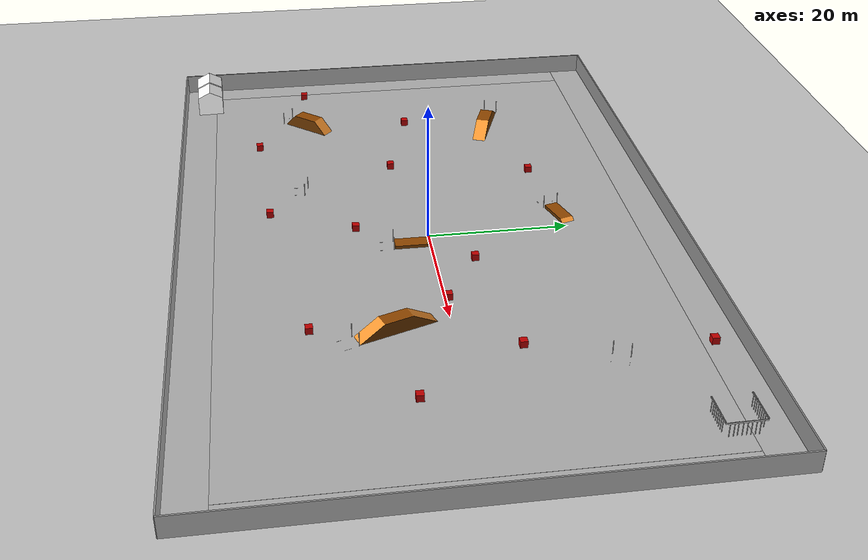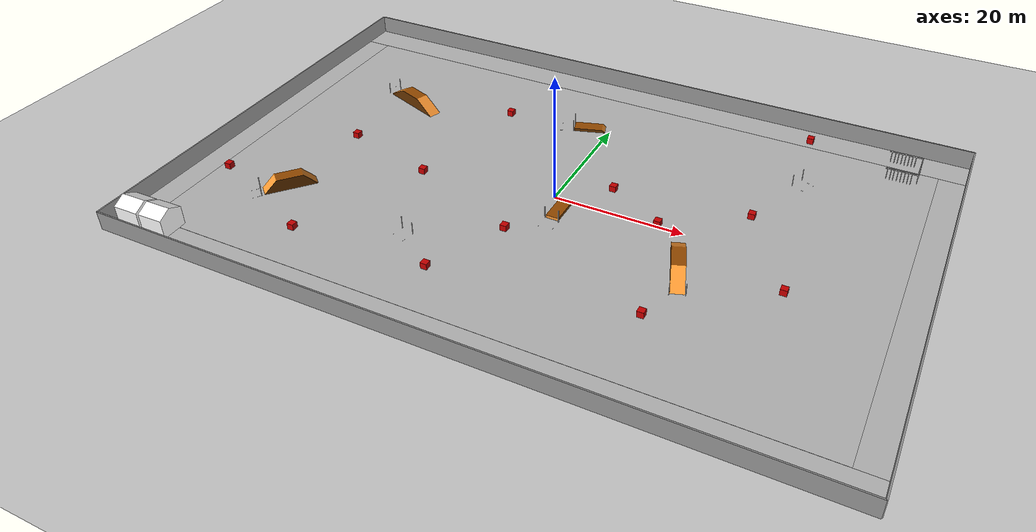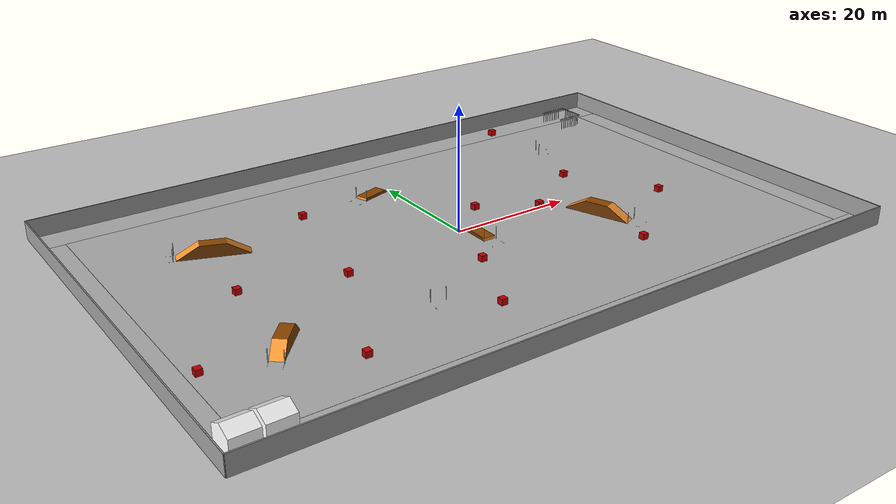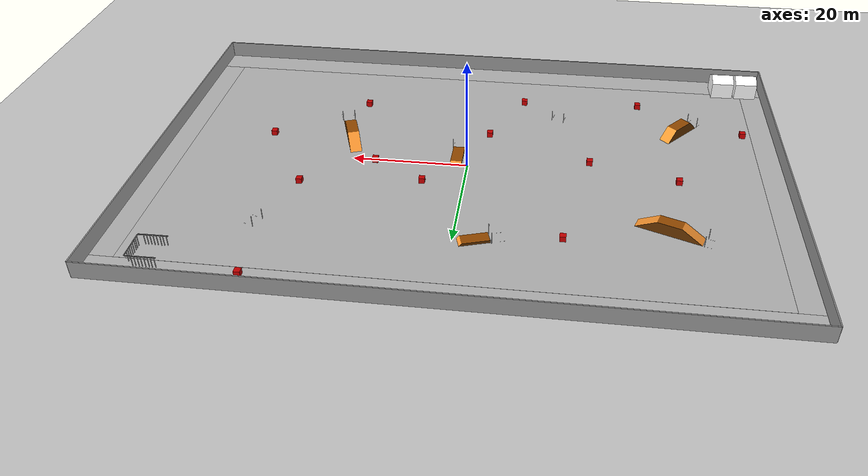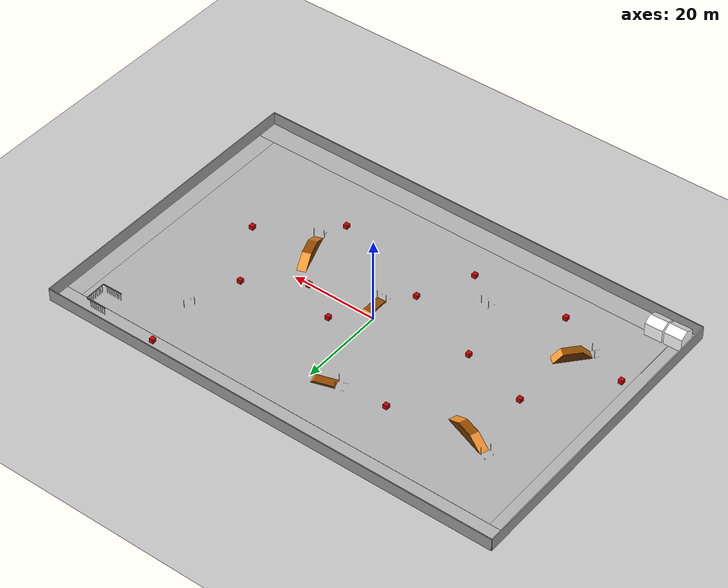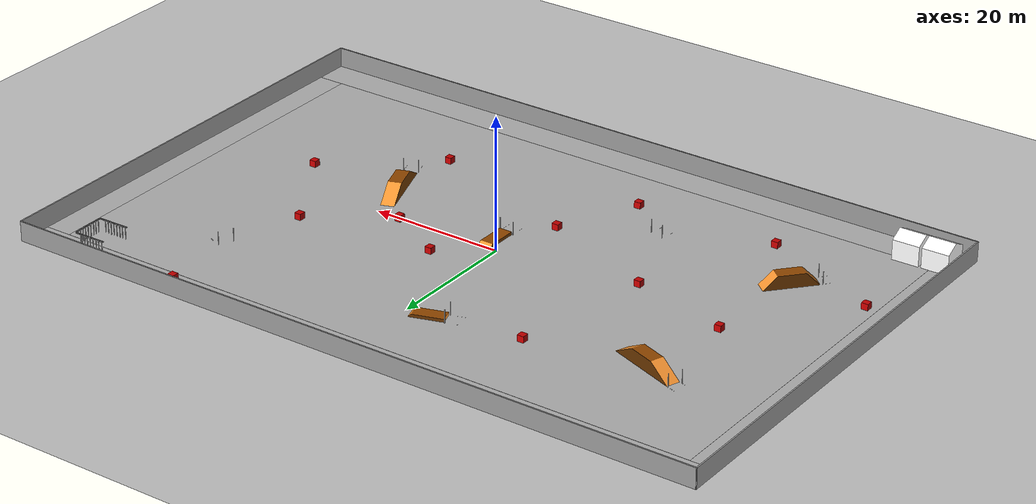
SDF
<sdf version="1.5">
 <world name="UGVC_Field">
  <scene><ambient>0.4 0.4 0.4 1</ambient><background>0.7 0.7 0.7 1</background><shadows>0</shadows></scene>
  <spherical_coordinates>
   <surface_model>EARTH_WGS84</surface_model>
   <latitude_deg>0</latitude_deg>
   <longitude_deg>0</longitude_deg>
   <elevation>0</elevation>
   <heading_deg>0</heading_deg>
  </spherical_coordinates>
  <light name="sun" type="directional">
   <pose>0 0 15 0 -0 0</pose>
   <diffuse>0.8 0.8 0.8 1</diffuse>
   <specular>0.2 0.2 0.2 1</specular>
   <attenuation>
    <range>1000</range>
    <constant>0.9</constant>
    <linear>0.01</linear>
    <quadratic>0.001</quadratic>
   </attenuation>
   <direction>-0.5 0.1 -0.9</direction>
  </light>
  <physics name="default_physics" default="0" type="ode">
   <max_step_size>0.001</max_step_size>
   <real_time_factor>1</real_time_factor>
   <real_time_update_rate>1000</real_time_update_rate>
   <gravity>0 0 -9.8</gravity>
   <magnetic_field>5.5645e-06 2.28758e-05 -4.23884e-05</magnetic_field>
  </physics>
  <model name="ground_plane">
   <static>true</static>
   <link name="link">
    <collision name="collision">
     <geometry><plane><normal>0 0 1</normal><size>100 100</size></plane></geometry>
     <surface><friction><ode><mu>100</mu><mu2>50</mu2></ode></friction></surface>
    </collision>
    <visual name="visual">
     <cast_shadows>0</cast_shadows>
     <geometry><plane><normal>0 0 1</normal><size>100 100</size></plane></geometry>
     <material>
      <script><uri>file://media/materials/scripts/gazebo.material</uri><name>Gazebo/Grey</name></script>
     </material>
    </visual>
   </link>
  </model>
  <include><uri>model://ugvc_field</uri><name>ugvc_field</name><static>true</static></include>
  <include>
   <pose>-48.8176 -29.0187 0 1e-06 -1e-06 -3.11904</pose>
   <uri>model://ugvc_station</uri>
   <name>ugvc_station</name>
   <static>true</static>
  </include>
  <include>
   <pose>-44.4318 -28.8933 0 1e-06 -1e-06 -3.11904</pose>
   <uri>model://ugvc_station</uri>
   <name>ugvc_station</name>
   <static>true</static>
  </include>
  <include>
   <pose>-48.4796 -15 0 0 -0 0</pose>
   <uri>model://ugvc_red_box</uri>
   <name>ugvc_red_box</name>
   <static>true</static>
  </include>
  <include>
   <pose>-30 -23 0 0 -0 0</pose>
   <uri>model://ugvc_red_box</uri>
   <name>ugvc_red_box</name>
   <static>true</static>
  </include>
  <include>
   <pose>-30 -23 0 0 -0 0</pose>
   <uri>model://ugvc_red_box</uri>
   <name>ugvc_red_box</name>
   <static>true</static>
  </include>
  <include>
   <pose>-36 1 0 0 -0 0</pose>
   <uri>model://ugvc_red_box</uri>
   <name>ugvc_red_box</name>
   <static>true</static>
  </include>
  <include>
   <pose>-21 -3 0 0 -0 0</pose>
   <uri>model://ugvc_red_box</uri>
   <name>ugvc_red_box</name>
   <static>true</static>
  </include>
  <include>
   <pose>30 31.5888 0 0 -0 0</pose>
   <uri>model://ugvc_red_box</uri>
   <name>ugvc_red_box</name>
   <static>true</static>
  </include>
  <include>
   <pose>36 -6 0 0 -0 0</pose>
   <uri>model://ugvc_red_box</uri>
   <name>ugvc_red_box</name>
   <static>true</static>
  </include>
  <include>
   <pose>-17 18 0 0 -0 0</pose>
   <uri>model://ugvc_red_box</uri>
   <name>ugvc_red_box</name>
   <static>true</static>
  </include>
  <include>
   <pose>-3 -10 0 0 -0 0</pose>
   <uri>model://ugvc_red_box</uri>
   <name>ugvc_red_box</name>
   <static>true</static>
  </include>
  <include>
   <pose>-8.5321 -22 0 0 -0 0</pose>
   <uri>model://ugvc_red_box</uri>
   <name>ugvc_red_box</name>
   <static>true</static>
  </include>
  <include>
   <pose>7 5.52128 0 0 -0 0</pose>
   <uri>model://ugvc_red_box</uri>
   <name>ugvc_red_box</name>
   <static>true</static>
  </include>
  <include>
   <pose>16 0.451873 0 0 -0 0</pose>
   <uri>model://ugvc_red_box</uri>
   <name>ugvc_red_box</name>
   <static>true</static>
  </include>
  <include>
   <pose>21 -18 0 0 -0 0</pose>
   <uri>model://ugvc_red_box</uri>
   <name>ugvc_red_box</name>
   <static>true</static>
  </include>
  <include>
   <pose>27.4633 8 0 0 -0 0</pose>
   <uri>model://ugvc_red_box</uri>
   <name>ugvc_red_box</name>
   <static>true</static>
  </include>
  <include>
   <pose>-38.3151 16.9781 0.009458 1.05879e-22 -2e-06 -1.92279</pose>
   <uri>model://ugvc_30degree_slope</uri>
   <name>ugvc_30degree_slope</name>
   <static>true</static>
  </include>
  <include>
   <pose>20.9283 -1.63208 0.009459 5.29396e-23 -1e-06 -2.79804</pose>
   <uri>model://ugvc_30degree_slope</uri>
   <name>ugvc_30degree_slope</name>
   <static>true</static>
  </include>
  <include>
   <pose>-40.3707 -17.1304 0.009458 0 -2e-06 -0.718635</pose>
   <uri>model://ugvc_45degree_slope</uri>
   <name>ugvc_45degree_slope</name>
   <static>true</static>
  </include>
  <include>
   <pose>0.990737 -5 0.009458 1e-06 -5.5e-05 1e-06</pose>
   <uri>model://ugvc_50cm_step</uri>
   <name>ugvc_50cm_step</name>
   <static>true</static>
  </include>
  <include>
   <pose>-6 20 0.009458 1e-06 -4e-06 -1.26639</pose>
   <uri>model://ugvc_50cm_step</uri>
   <name>ugvc_50cm_step</name>
   <static>true</static>
  </include>
  <include>
   <pose>45.8574 26.5851 0.009845 0.009899 -0.000199 -3.12824</pose>
   <uri>model://ugvc_end</uri>
   <name>ugvc_end</name>
   <static>true</static>
  </include>
  <include>
   <pose>45.637 31.5824 0.00985 0.010055 -0.000202 -3.12824</pose>
   <uri>model://ugvc_end</uri>
   <name>ugvc_end</name>
   <static>true</static>
  </include>
  <include>
   <pose>47.1913 30.2023 0.00984 0.00976 -0.000197 -1.55574</pose>
   <uri>model://ugvc_end</uri>
   <name>ugvc_end</name>
   <static>true</static>
  </include>
  <include>
   <pose>-40.5786 -17.3716 0.009821 -0.000447 1e-06 3e-05</pose>
   <uri>model://ugvc_gate</uri>
   <name>ugvc_gate</name>
   <static>true</static>
  </include>
  <include>
   <pose>-39.053 -18.8373 0.00982 -0.000447 5e-06 2.9e-05</pose>
   <uri>model://ugvc_gate</uri>
   <name>ugvc_gate</name>
   <static>true</static>
  </include>
  <include>
   <pose>-39.3489 15.1412 0.009821 -0.000447 1e-06 2.9e-05</pose>
   <uri>model://ugvc_gate</uri>
   <name>ugvc_gate</name>
   <static>true</static>
  </include>
  <include>
   <pose>-38.5 17.0471 0.00982 -0.000447 5e-06 2.6e-05</pose>
   <uri>model://ugvc_gate</uri>
   <name>ugvc_gate</name>
   <static>true</static>
  </include>
  <include>
   <pose>-16.1233 -16.1055 0.009741 -0.000447 1.65436e-24 1.8e-05</pose>
   <uri>model://ugvc_gate</uri>
   <name>ugvc_gate</name>
   <static>true</static>
  </include>
  <include>
   <pose>-14.0005 -16.703 0.009741 -0.000447 1e-06 1.7e-05</pose>
   <uri>model://ugvc_gate</uri>
   <name>ugvc_gate</name>
   <static>true</static>
  </include>
  <include>
   <pose>-6.19207 20.0689 0.009701 -0.000447 3e-06 1.6e-05</pose>
   <uri>model://ugvc_gate</uri>
   <name>ugvc_gate</name>
   <static>true</static>
  </include>
  <include>
   <pose>-5.52894 17.9434 0.009701 -0.000447 3e-06 1.6e-05</pose>
   <uri>model://ugvc_gate</uri>
   <name>ugvc_gate</name>
   <static>true</static>
  </include>
  <include>
   <pose>22.6944 -12.7795 0.00968 -0.000447 1e-06 1.3e-05</pose>
   <uri>model://ugvc_gate</uri>
   <name>ugvc_gate</name>
   <static>true</static>
  </include>
  <include>
   <pose>24.741 -12.0225 0.009681 -0.000447 2e-06 1.6e-05</pose>
   <uri>model://ugvc_gate</uri>
   <name>ugvc_gate</name>
   <static>true</static>
  </include>
  <include>
   <pose>30.5524 18.4419 0.00967 -0.000447 1e-06 1.1e-05</pose>
   <uri>model://ugvc_gate</uri>
   <name>ugvc_gate</name>
   <static>true</static>
  </include>
  <include>
   <pose>31.5116 20.499 0.00966 -0.000447 1e-06 1.2e-05</pose>
   <uri>model://ugvc_gate</uri>
   <name>ugvc_gate</name>
   <static>true</static>
  </include>
  <include>
   <pose>0.876505 -5.08878 0.00964 -0.000447 1e-06 1e-05</pose>
   <uri>model://ugvc_gate</uri>
   <name>ugvc_gate</name>
   <static>true</static>
  </include>
  <include>
   <pose>3.07684 -5.17547 0.00964 -0.000447 1e-06 1e-05</pose>
   <uri>model://ugvc_gate</uri>
   <name>ugvc_gate</name>
   <static>true</static>
  </include>
  <include>
   <pose>-41.8562 -19.2349 0.009976 0.012255 -0.019512 -0.6183</pose>
   <uri>model://ugvc_rope</uri>
   <name>ugvc_rope</name>
   <static>true</static>
  </include>
  <include>
   <pose>-40.437 -20.6569 0.009942 0.012255 -0.019512 -0.6183</pose>
   <uri>model://ugvc_rope</uri>
   <name>ugvc_rope</name>
   <static>true</static>
  </include>
  <include>
   <pose>-41.4545 15.878 0.009503 0.012883 -0.028585 -1.87902</pose>
   <uri>model://ugvc_rope</uri>
   <name>ugvc_rope</name>
   <static>true</static>
  </include>
  <include>
   <pose>-40.717 17.741 0.009461 0.013504 -0.03042 -1.87904</pose>
   <uri>model://ugvc_rope</uri>
   <name>ugvc_rope</name>
   <static>true</static>
  </include>
  <include>
   <pose>-14.0401 -16.7673 0.009994 0.012883 -0.028585 2.9554</pose>
   <uri>model://ugvc_rope</uri>
   <name>ugvc_rope</name>
   <static>true</static>
  </include>
  <include>
   <pose>-16.0982 -16.1858 0.009993 0.00985 -0.02078 2.95357</pose>
   <uri>model://ugvc_rope</uri>
   <name>ugvc_rope</name>
   <static>true</static>
  </include>
  <include>
   <pose>-5.65139 17.9413 0.009993 0.012883 -0.028585 1.90197</pose>
   <uri>model://ugvc_rope</uri>
   <name>ugvc_rope</name>
   <static>true</static>
  </include>
  <include>
   <pose>-6.25635 19.989 0.009865 0.01288 -0.028571 1.90197</pose>
   <uri>model://ugvc_rope</uri>
   <name>ugvc_rope</name>
   <static>true</static>
  </include>
  <include>
   <pose>0.915246 -5.25498 0.009945 0.012777 -0.028569 -3.13883</pose>
   <uri>model://ugvc_rope</uri>
   <name>ugvc_rope</name>
   <static>true</static>
  </include>
  <include>
   <pose>3.06273 -5.29588 0.009986 0.012773 -0.02999 -3.13884</pose>
   <uri>model://ugvc_rope</uri>
   <name>ugvc_rope</name>
   <static>true</static>
  </include>
  <include>
   <pose>22.7632 -12.8845 0.009461 0.012777 -0.028569 -2.76064</pose>
   <uri>model://ugvc_rope</uri>
   <name>ugvc_rope</name>
   <static>true</static>
  </include>
  <include>
   <pose>24.7683 -12.1428 0.009461 0.012777 -0.028569 -2.76064</pose>
   <uri>model://ugvc_rope</uri>
   <name>ugvc_rope</name>
   <static>true</static>
  </include>
  <include>
   <pose>30.6651 18.4248 0.009461 0.012777 -0.028569 -1.96933</pose>
   <uri>model://ugvc_rope</uri>
   <name>ugvc_rope</name>
   <static>true</static>
  </include>
  <include>
   <pose>31.6705 20.4505 0.009461 0.012777 -0.028569 -1.96933</pose>
   <uri>model://ugvc_rope</uri>
   <name>ugvc_rope</name>
   <static>true</static>
  </include>
 </world>
</sdf>

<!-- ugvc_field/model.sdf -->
<sdf version="1.4">
  <model name="ugvc_field">
    <static>true</static>

    <link name="field">
      <pose>0 0 0.01 0 0 0</pose>

      <collision name="collision">
        <geometry>
          <plane>
            <normal>0 0 1</normal>
            <size>108 70</size>
          </plane>
        </geometry>
        <surface>
          <friction>
            <ode>
              <mu>100</mu>
              <mu2>50</mu2>
            </ode>
          </friction>
        </surface>
      </collision>

      <visual name="carpet">
        <cast_shadows>false</cast_shadows>
        <geometry>
          <plane>
            <normal>0 0 1</normal>
            <size>100 60</size>
          </plane>
        </geometry>
        <material>
          <script>
            <uri>file://materials/scripts/</uri>
            <uri>file://materials/textures/</uri>
            <name>UGVC/Carpet</name>
          </script>
        </material>
      </visual>

       <visual name="base1">
        <pose>0 32.5 0.01 0 0 0</pose>
        <cast_shadows>false</cast_shadows>
        <geometry>
          <plane>
            <normal>0 0 1</normal>
            <size>108 5</size>
          </plane>
        </geometry>
        <material>
          <script>
            <uri>file://materials/scripts/</uri>
            <uri>file://materials/textures/</uri>
            <name>UGVC/FieldBorder</name>
          </script>
        </material>
      </visual>
      <visual name="base2">
        <pose>0 -32.5 0.01 0 0 0</pose>
        <cast_shadows>false</cast_shadows>
        <geometry>
          <plane>
            <normal>0 0 1</normal>
            <size>108 5</size>
          </plane>
        </geometry>
        <material>
          <script>
            <uri>file://materials/scripts/</uri>
            <uri>file://materials/textures/</uri>
            <name>UGVC/FieldBorder</name>
          </script>
        </material>
      </visual>
      <visual name="base3">
        <pose>52 0 0.01 0 0 0</pose>
        <cast_shadows>false</cast_shadows>
        <geometry>
          <plane>
            <normal>0 0 1</normal>
            <size>4 70</size>
          </plane>
        </geometry>
        <material>
          <script>
            <uri>file://materials/scripts/</uri>
            <uri>file://materials/textures/</uri>
            <name>UGVC/FieldBorder</name>
          </script>
        </material>
      </visual>
      <visual name="base4">
        <pose>-52 0 0.01 0 0 0</pose>
        <cast_shadows>false</cast_shadows>
        <geometry>
          <plane>
            <normal>0 0 1</normal>
            <size>4 70</size>
          </plane>
        </geometry>
        <material>
          <script>
            <uri>file://materials/scripts/</uri>
            <uri>file://materials/textures/</uri>
            <name>UGVC/FieldBorder</name>
          </script>
        </material>
      </visual>

      <visual name='wall_1'>
          <pose>0 35 1.5 0 0 0</pose>
          <cast_shadows>false</cast_shadows>
          <geometry>
            <box>
              <size>108 0.2 3</size>
            </box>
          </geometry>
          <material>
            <script>
              <uri>file://materials/scripts</uri>
              <uri>file://materials/textures</uri>
              <name>UGVC/grey_wall</name>
            </script>
          </material>
        </visual>

        <collision name='wall_1'>
          <pose>0 35 1.5 0 0 0</pose>
          <geometry>
            <box>
              <size>108 0.2 3</size>
            </box>
          </geometry>
          <max_contacts>10</max_contacts>
          <surface>
            <contact>
              <ode/>
            </contact>
            <bounce/>
            <friction>
              <ode/>
            </friction>
          </surface>
        </collision>

        <visual name='wall_2'>
          <pose>0 -35 1.5 0 0 0</pose>
          <cast_shadows>false</cast_shadows>
          <geometry>
            <box>
              <size>108 0.2 3</size>
            </box>
          </geometry>
          <material>
            <script>
              <uri>file://materials/scripts</uri>
              <uri>file://materials/textures</uri>
              <name>UGVC/grey_wall</name>
            </script>
          </material>
        </visual>

        <collision name='wall_2'>
          <pose>0 -35 1.5 0 0 0</pose>
          <geometry>
            <box>
              <size>108 0.2 3</size>
            </box>
          </geometry>
          <max_contacts>10</max_contacts>
          <surface>
            <contact>
              <ode/>
            </contact>
            <bounce/>
            <friction>
              <ode/>
            </friction>
          </surface>
        </collision>

        <visual name='wall_3'>
          <pose>54 0 1.5 0 0 -1.5708</pose>
          <cast_shadows>false</cast_shadows>
          <geometry>
            <box>
              <size>70 0.2 3</size>
            </box>
          </geometry>
          <material>
            <script>
              <uri>file://materials/scripts</uri>
              <uri>file://materials/textures</uri>
              <name>UGVC/grey_wall</name>
            </script>
          </material>
        </visual>

        <collision name='wall_3'>
          <pose>54 0 1.5 0 0 -1.5708</pose>
          <geometry>
            <box>
              <size>70 0.2 3</size>
            </box>
          </geometry>
          <max_contacts>10</max_contacts>
          <surface>
            <contact>
              <ode/>
            </contact>
            <bounce/>
            <friction>
              <ode/>
            </friction>
          </surface>
        </collision>

        <visual name='wall_4'>
          <pose>-54 0 1.5 0 0 1.5708</pose>
          <cast_shadows>false</cast_shadows>
          <geometry>
            <box>
              <size>70 0.2 3</size>
            </box>
          </geometry>
          <material>
            <script>
              <uri>file://materials/scripts</uri>
              <uri>file://materials/textures</uri>
              <name>UGVC/grey_wall</name>
            </script>
          </material>
        </visual>

        <collision name='wall_4'>
          <pose>-54 0 1.5 0 0 1.5708</pose>
          <geometry>
            <box>
              <size>70 0.2 3</size>
            </box>
          </geometry>
          <max_contacts>10</max_contacts>
          <surface>
            <contact>
              <ode/>
            </contact>
            <bounce/>
            <friction>
              <ode/>
            </friction>
          </surface>
        </collision>

    </link>

  </model>
</sdf>

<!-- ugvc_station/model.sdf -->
<sdf version="1.4">
  <model name="ugvc_station">
    <static>false</static>

    <link name="ugvc_station">
      <pose>0 0 0 0 0 0</pose>
      <inertial>
        <mass>1</mass>
        <inertia>
          <ixx>1</ixx>
          <ixy>0</ixy>
          <ixz>0</ixz>
          <iyy>1</iyy>
          <iyz>0</iyz>
          <izz>1</izz>
        </inertia>
      </inertial>

      <collision name='collision'>
        <geometry>
          <mesh>
              <uri>file://meshes/station.dae</uri>
            </mesh>
        </geometry>
        <max_contacts>10</max_contacts>
        <surface>
          <contact>
            <ode>
            <max_vel>0.1</max_vel>
            <min_depth>0.001</min_depth>
            </ode>
          </contact>
          <friction>
            <ode/>
          </friction>
        </surface>
      </collision>

      <visual name='visual'>
          <geometry>
            <mesh>
              <uri>file://meshes/station.dae</uri>
            </mesh>
          </geometry>
          <material>

        </material>
        </visual>
    </link>
  </model>
</sdf>

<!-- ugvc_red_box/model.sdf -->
<sdf version="1.4">
  <model name="ugvc_red_box">
    <static>false</static>

    <link name="red_box">
      <pose>0 0 0.5 0 -0 0</pose>
      <inertial>
        <mass>1</mass>
        <inertia>
          <ixx>1</ixx>
          <ixy>0</ixy>
          <ixz>0</ixz>
          <iyy>1</iyy>
          <iyz>0</iyz>
          <izz>1</izz>
        </inertia>
      </inertial>

      <collision name="collision">
        <geometry>
          <box><size>1 1 1</size></box>
        </geometry>
        <surface>
          <contact>
            <ode>
              <max_vel>0.1</max_vel>
              <min_depth>0.001</min_depth>
            </ode>
          </contact>
        </surface>
      </collision>

      <visual name="visual">
        <pose>-0.5 -0.5 -0.5 0 -0 0</pose>
        <geometry>
          <mesh>
              <uri>file://meshes/redbox1.dae</uri>
            </mesh>
        </geometry>
        <material>

        </material>
      </visual>
    </link>
  </model>
</sdf>

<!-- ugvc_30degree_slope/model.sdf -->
<sdf version="1.4">
  <model name="ugvc_30degree_slope">
    <static>false</static>

    <link name="30degree_slope">
      <pose>0 0 0 0 -0 0</pose>
      <inertial>
        <mass>1</mass>
        <inertia>
          <ixx>1</ixx>
          <ixy>0</ixy>
          <ixz>0</ixz>
          <iyy>1</iyy>
          <iyz>0</iyz>
          <izz>1</izz>
        </inertia>
      </inertial>

      <collision name='collision'>
        <geometry>
          <mesh>
            <uri>file://meshes/30slope.dae</uri>
          </mesh>
        </geometry>
        <max_contacts>10</max_contacts>
        <surface>
          <contact>
            <ode>
            <max_vel>0.1</max_vel>
            <min_depth>0.001</min_depth>
            </ode>
          </contact>
          <friction>
            <ode/>
          </friction>
        </surface>
      </collision>

      <visual name='visual'>
          <geometry>
            <mesh>
              <uri>file://meshes/30slope1.dae</uri>
            </mesh>
          </geometry>
          <material>

        </material>
        </visual>
    </link>
  </model>
</sdf>

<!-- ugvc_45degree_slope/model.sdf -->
<sdf version="1.4">
  <model name="ugvc_45degree_slope">
    <static>false</static>

    <link name="45degree_slope">
      <pose>0 0 0 0 -0 0</pose>
      <inertial>
        <mass>1</mass>
        <inertia>
          <ixx>1</ixx>
          <ixy>0</ixy>
          <ixz>0</ixz>
          <iyy>1</iyy>
          <iyz>0</iyz>
          <izz>1</izz>
        </inertia>
      </inertial>

      <collision name='collision'>
        <geometry>
          <mesh>
            <uri>file://meshes/45slope.dae</uri>
          </mesh>
        </geometry>
        <max_contacts>10</max_contacts>
        <surface>
          <contact>
            <ode>
            <max_vel>0.1</max_vel>
            <min_depth>0.001</min_depth>
            </ode>
          </contact>
          <friction>
            <ode/>
          </friction>
        </surface>
      </collision>

      <visual name='visual'>
          <geometry>
            <mesh>
              <uri>file://meshes/45slope1.dae</uri>
            </mesh>
          </geometry>
          <material>

        </material>
        </visual>
    </link>
  </model>
</sdf>

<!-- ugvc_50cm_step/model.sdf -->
<sdf version="1.4">
  <model name="ugvc_50cm_step">
    <static>false</static>

    <link name="50cm_step">
      <pose>0 0 0 0 -0 0</pose>
      <inertial>
        <mass>1</mass>
        <inertia>
          <ixx>1</ixx>
          <ixy>0</ixy>
          <ixz>0</ixz>
          <iyy>1</iyy>
          <iyz>0</iyz>
          <izz>1</izz>
        </inertia>
      </inertial>

      <collision name='collision'>
        <geometry>
          <mesh>
            <uri>file://meshes/50cmstep.dae</uri>
          </mesh>
        </geometry>
        <max_contacts>10</max_contacts>
        <surface>
          <contact>
            <ode>
            <max_vel>0.1</max_vel>
            <min_depth>0.001</min_depth>
            </ode>
          </contact>
          <friction>
            <ode/>
          </friction>
        </surface>
      </collision>

      <visual name='visual'>
          <geometry>
            <mesh>
              <uri>file://meshes/50cmstep1.dae</uri>
            </mesh>
          </geometry>
          <material>

        </material>
        </visual>
    </link>
  </model>
</sdf>

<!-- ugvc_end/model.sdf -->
<sdf version="1.4">
  <model name="ugvc_end">
    <static>false</static>

    <link name="ugvc_end">
      <pose>0 0 0 0 -0 0</pose>
      <inertial>
        <mass>1</mass>
        <inertia>
          <ixx>1</ixx>
          <ixy>0</ixy>
          <ixz>0</ixz>
          <iyy>1</iyy>
          <iyz>0</iyz>
          <izz>1</izz>
        </inertia>
      </inertial>

      <collision name="collision">
        <geometry>
          <mesh>
            <uri>file://meshes/end.dae</uri>
          </mesh>
        </geometry>
        <max_contacts>10</max_contacts>
        <surface>
          <contact>
            <ode>
              <max_vel>0.1</max_vel>
              <min_depth>0.001</min_depth>
            </ode>
          </contact>
        </surface>
      </collision>

      <visual name="visual">
        <geometry>
          <mesh>
            <uri>file://meshes/end.dae</uri>
          </mesh>
        </geometry>
        <material>

        </material>
      </visual>
    </link>
  </model>
</sdf>

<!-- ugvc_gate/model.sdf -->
<sdf version="1.4">
  <model name="ugvc_gate">
    <static>false</static>

    <link name="gate">
      <pose>0 0 1 0 -0 0</pose>
      <inertial>
        <mass>1</mass>
        <inertia>
          <ixx>1</ixx>
          <ixy>0</ixy>
          <ixz>0</ixz>
          <iyy>1</iyy>
          <iyz>0</iyz>
          <izz>1</izz>
        </inertia>
      </inertial>

      <collision name="collision">
        <geometry>
          <cylinder>
              <radius>0.06</radius>
              <length>2</length>
            </cylinder>
        </geometry>
        <max_contacts>10</max_contacts>
        <surface>
          <contact>
            <ode>
              <max_vel>0.1</max_vel>
              <min_depth>0.001</min_depth>
            </ode>
          </contact>
        </surface>
      </collision>

      <visual name="visual">
        <pose>0 0 -1 0 0 0</pose>
        <geometry>
          <mesh>
            <uri>file://meshes/gate.dae</uri>
          </mesh>
        </geometry>
        <material>

        </material>
      </visual>
    </link>
  </model>
</sdf>

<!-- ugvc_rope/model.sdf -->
<sdf version="1.4">
  <model name="ugvc_rope">
    <static>false</static>

    <link name="ugvc_rope">
      <pose>0 0 0 0 0 0</pose>
      <inertial>
        <mass>1</mass>
        <inertia>
          <ixx>1</ixx>
          <ixy>0</ixy>
          <ixz>0</ixz>
          <iyy>1</iyy>
          <iyz>0</iyz>
          <izz>1</izz>
        </inertia>
      </inertial>

      <collision name='collision'>
        <geometry>
          <mesh>
            <uri>file://meshes/rope.dae</uri>
          </mesh>
        </geometry>
        <max_contacts>10</max_contacts>
        <surface>
          <contact>
            <ode>
            <max_vel>0.1</max_vel>
            <min_depth>0.001</min_depth>
            </ode>
          </contact>
          <friction>
            <ode/>
          </friction>
        </surface>
      </collision>

      <visual name='visual'>
          <geometry>
            <mesh>
              <uri>file://meshes/rope.dae</uri>
            </mesh>
          </geometry>
          <material>

        </material>
        </visual>
    </link>
  </model>
</sdf>
